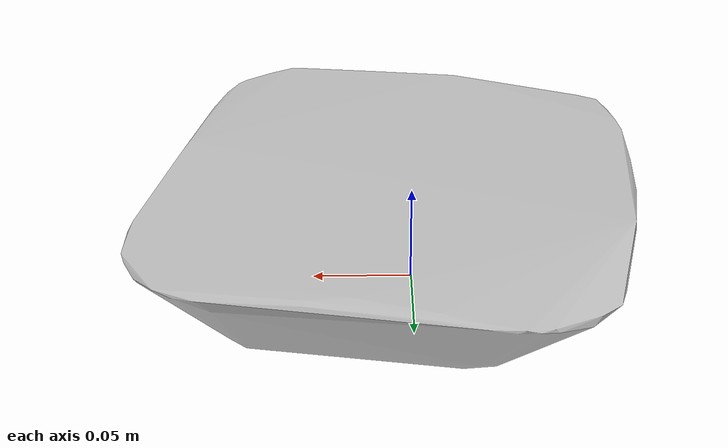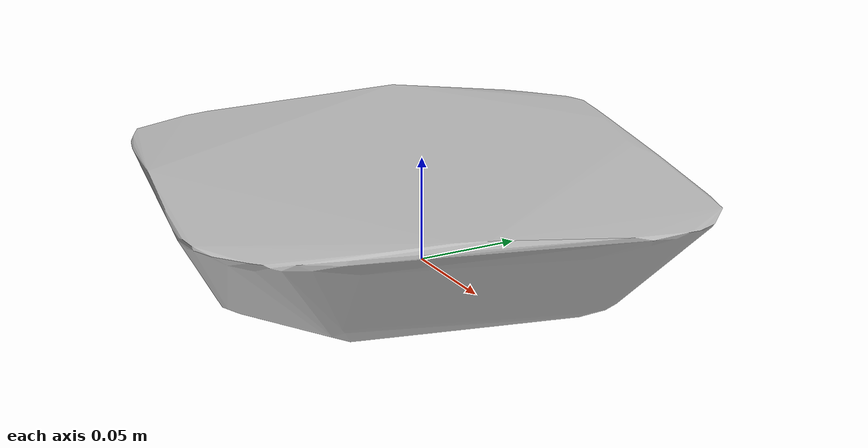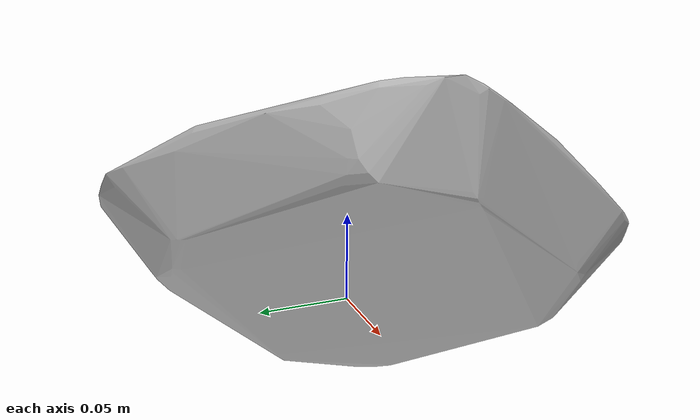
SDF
<?xml version='1.0'?>
<sdf version="1.4">
  <model name="paper_cup_holder">
    <static>false</static>
    <link name="link">
      <inertial>
        <pose>0.005466801780345994 -0.010525090032955025 0.03220617896594689 2.7803116771979264 1.5620408928073917 -1.897148012580673</pose>
        <mass>0.19932848143022797</mass>
        <inertia>
          <ixx>0.0013970113705709432</ixx>
          <ixy>-5.546917196505778e-20</ixy>
          <ixz>-7.311883609729871e-20</ixz>
          <iyy>0.0007350670603722973</iyy>
          <iyz>8.191136228529116e-21</iyz>
          <izz>0.0007310616902578992</izz>
        </inertia>
      </inertial>
      <collision name="collision">
        <geometry>
          <mesh>
            <!-- Use a downsampled mesh for collisions -->
            <uri>model:///paper_cup_holder/paper_cup_holder_250_collision.obj</uri>
	        </mesh>
        </geometry>
        <surface>
      </surface>
      </collision>
      <visual name="visual">
        <geometry>
          <mesh>
            <uri>model:///paper_cup_holder/optimized_tsdf_texture_mapped_mesh.obj</uri>
	        </mesh>
        </geometry>
        <material>
          <script>
            <uri>model:///paper_cup_holder/paper_cup_holder.material</uri>
            <name>paper_cup_holder</name>
          </script>
        </material>
      </visual>
    </link>
  </model>
</sdf>
